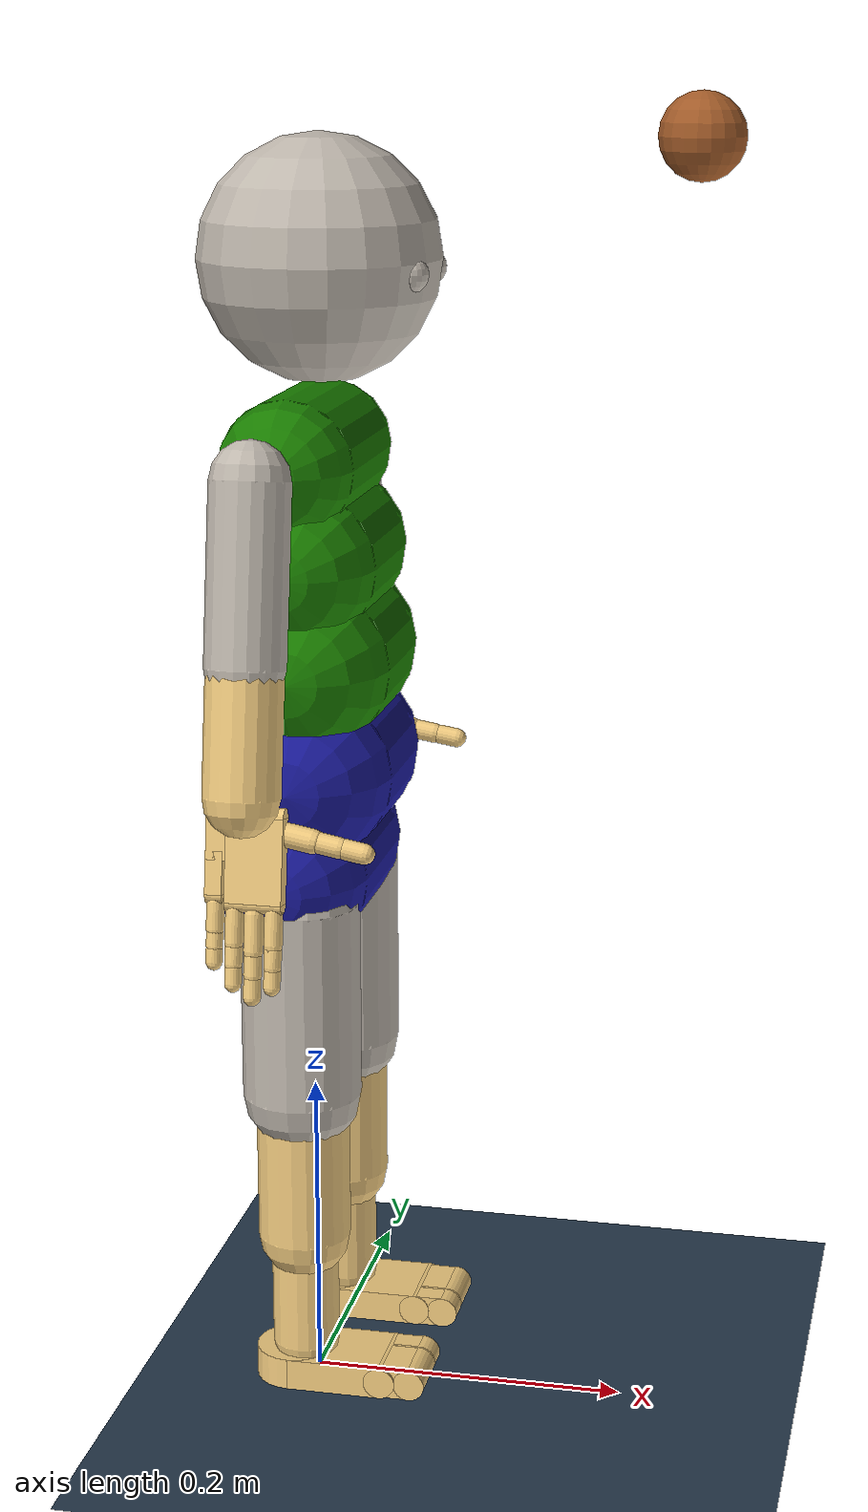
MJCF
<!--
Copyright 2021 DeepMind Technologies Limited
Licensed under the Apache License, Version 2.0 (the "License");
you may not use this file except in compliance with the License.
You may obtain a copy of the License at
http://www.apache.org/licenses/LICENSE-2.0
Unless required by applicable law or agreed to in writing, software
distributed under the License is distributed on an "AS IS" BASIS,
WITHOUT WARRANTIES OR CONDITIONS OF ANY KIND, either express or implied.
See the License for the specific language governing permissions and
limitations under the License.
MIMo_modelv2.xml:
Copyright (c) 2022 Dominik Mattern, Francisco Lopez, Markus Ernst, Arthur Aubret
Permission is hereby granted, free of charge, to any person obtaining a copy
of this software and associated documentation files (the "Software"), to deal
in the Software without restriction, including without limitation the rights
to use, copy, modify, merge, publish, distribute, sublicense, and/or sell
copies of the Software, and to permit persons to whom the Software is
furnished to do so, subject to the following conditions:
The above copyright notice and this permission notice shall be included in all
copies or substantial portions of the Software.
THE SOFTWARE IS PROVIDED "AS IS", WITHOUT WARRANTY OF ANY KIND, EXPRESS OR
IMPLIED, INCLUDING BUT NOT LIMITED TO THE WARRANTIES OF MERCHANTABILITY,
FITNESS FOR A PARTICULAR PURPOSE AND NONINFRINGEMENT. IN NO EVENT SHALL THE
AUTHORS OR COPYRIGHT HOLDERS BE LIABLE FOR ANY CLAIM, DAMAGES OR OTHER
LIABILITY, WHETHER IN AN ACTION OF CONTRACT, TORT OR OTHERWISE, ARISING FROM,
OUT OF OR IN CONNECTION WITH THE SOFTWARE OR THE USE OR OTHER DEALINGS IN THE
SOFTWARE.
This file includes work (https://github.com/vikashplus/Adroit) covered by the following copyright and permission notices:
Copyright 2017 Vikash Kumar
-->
<mujoco model="MIMo">

    <compiler inertiafromgeom="true" angle="degree"/>

    <option timestep="0.005" iterations="50" tolerance="1e-10" solver="Newton" jacobian="dense" cone="elliptic" impratio="1.0"/>

    <size nconmax="1000" njmax="5000" nstack="10000000" nuser_cam="3"/>

    <visual>
        <map force="0.1" zfar="30" znear="0.005"/>
        <rgba haze="0.15 0.25 0.35 1"/>
        <quality shadowsize="4096"/>
        <global offwidth="800" offheight="800"/>
    </visual>

    <default>
        <geom material="matgeom" condim="3" solimp="0.95 0.99 0.001 0.5 1" solref="0.005 1"/>
    </default>

    <asset>
        <texture type="skybox" builtin="gradient" rgb1="0.3 0.5 0.7" rgb2="0 0 0" width="512" height="512"/>

        <texture name="texplane" type="2d" builtin="checker" rgb1=".2 .3 .4" rgb2=".1 0.15 0.2" width="512" height="512" mark="cross" markrgb=".8 .8 .8"/>

        <texture name="texgeom" type="cube" builtin="flat" mark="cross" width="127" height="1278"
            rgb1="0.8 0.6 0.4" rgb2="0.8 0.6 0.4" markrgb="1 1 1" random="0.01"/>

        <material name="matplane" reflectance="0.3" texture="texplane" texrepeat="1 1" texuniform="true"/>

        <material name="matgeom" texture="texgeom" texuniform="true" rgba="0.8 0.6 .4 1"/>

		<material name="matmocap" texture="texgeom" texuniform="true" rgba="0.5 0 0.5 0.5"/>
    </asset>

	<!-- Import everything except the kinematic tree -->
	<include file="catch_meta.xml"></include>

    <equality>
        <weld body1="upper_body"/>
        <weld body1="lower_body"/>
        <weld body1="left_hand"/>
        <weld body1="left_foot"/>
        <weld body1="right_foot"/>
        <joint joint1="robot:right_th_swivel" polycoef="0 0 0 0 0"/>
        <joint joint1="robot:right_th_adduction" polycoef="-0.9 0 0 0 0"/>
        <joint joint1="robot:right_th_pivot" polycoef="0 0 0 0 0"/>
        <joint joint1="robot:right_th_middle" polycoef="0.4 0 0 0 0"/>
        <joint joint1="robot:right_th_distal" polycoef="0.3 0 0 0 0"/>
    </equality>

    <worldbody>
        <geom name="floor" pos="0 0 0" size="0 0 .25" type="plane" material="matplane" condim="3"/>

        <light directional="false" diffuse=".4 .4 .4" specular="0 0 0" pos="0 0 10" dir="0 0 -1" castshadow="false"/>
        <light mode="targetbodycom" target="upper_body" directional="false" diffuse=".8 .8 .8" specular="0.3 0.3 0.3" pos="0 0 5.0" dir="0 0 -1"/>

        <!-- The location and orientation of the base model can be set using this body -->
		<body name="mimo_location" pos="0 0 .35" euler="0 0 0">
			<freejoint/>
			<include file="mimo/MIMo_modelv2.xml"></include> <!-- Import the actual model-->
		</body>

        <body name="target" pos="0.24 -0.04 .8">
            <freejoint name="target_joint"/>
			<geom mass=".5" type="sphere" material="matgeom" size="0.025" pos="0 0 0" condim="6" solimp="0.95 0.99 0.001 0.5 1" solref="0.005 1"/>
		</body>

    </worldbody>
</mujoco>

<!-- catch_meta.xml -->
<mujoco model="MIMo">

	<!-- We use the first three user values on actuators to store the muscle model parameters. The first is VMAX, the next two are FMAX.-->
	<size nuser_actuator="3"/>

	<default>
		<default class="mimo">
        	<joint limited="true" damping=".1" stiffness=".1" armature="0.001" solimplimit="0.98 0.99 0.001 .5 1" solreflimit="0.02 1"/>
        	<geom condim="3" material="skin" friction="1 0.005 0.0002" solimp="0.95 0.99 0.001 0.5 1" solref="0.005 1"/>
        	<motor ctrlrange="-1 1" ctrllimited="true" forcelimited="true"/>
    	</default>
	</default>

    <asset>

		<texture name="tex_head_default" type="cube" fileright="tex/head_front.png" fileleft="tex/head_back.png" fileup="tex/head_left.png" filedown="tex/head_right.png" filefront="tex/head_top.png" rgb1="0.95 .8 .5"/>
		<texture name="tex_head_happy" type="cube" fileright="tex/head_front_happy.png" fileleft="tex/head_back.png" fileup="tex/head_left.png" filedown="tex/head_right.png" filefront="tex/head_top.png" rgb1="0.95 .8 .5"/>
		<texture name="tex_head_sad" type="cube" fileright="tex/head_front_sad.png" fileleft="tex/head_back.png" fileup="tex/head_left.png" filedown="tex/head_right.png" filefront="tex/head_top.png" rgb1="0.95 .8 .5"/>
		<texture name="tex_head_surprised" type="cube" fileright="tex/head_front_surprised.png" fileleft="tex/head_back.png" fileup="tex/head_left.png" filedown="tex/head_right.png" filefront="tex/head_top.png" rgb1="0.95 .8 .5"/>
		<texture name="tex_head_angry" type="cube" fileright="tex/head_front_angry.png" fileleft="tex/head_back.png" fileup="tex/head_left.png" filedown="tex/head_right.png" filefront="tex/head_top.png" rgb1="0.95 .8 .5"/>
		<texture name="tex_head_disgusted" type="cube" fileright="tex/head_front_disgusted.png" fileleft="tex/head_back.png" fileup="tex/head_left.png" filedown="tex/head_right.png" filefront="tex/head_top.png" rgb1="0.95 .8 .5"/>
		<texture name="tex_head_scared" type="cube" fileright="tex/head_front_scared.png" fileleft="tex/head_back.png" fileup="tex/head_left.png" filedown="tex/head_right.png" filefront="tex/head_top.png" rgb1="0.95 .8 .5"/>
		<texture name="tex_top_sleeve" type="cube" fileright="tex/sleeve_right.png" fileleft="tex/sleeve_left.png" fileup="tex/sleeve_up.png" filedown="tex/sleeve_down.png" filefront="tex/sleeve_front.png" fileback="tex/sleeve_back.png" rgb1="0.95 .8 .5"/>
		<texture name="tex_pants_leg" type="cube" fileright="tex/leg_right.png" fileleft="tex/leg_left.png" fileup="tex/leg_up.png" filedown="tex/leg_down.png" filefront="tex/leg_front.png" fileback="tex/leg_back.png" rgb1="0.95 .8 .5"/>
		<texture name="tex_eye_left" type="cube" fileright="tex/eye_pupil_left.png" rgb1="1 1 1"/>
		<texture name="tex_eye_right" type="cube" fileright="tex/eye_pupil_right.png" rgb1="1 1 1"/>

		<material name="skin" rgba="0.95 0.8 0.5 1" specular=".15" shininess=".7"/>
		<material name="buttons" rgba=".05 .05 .05 1" specular=".9" shininess=".9"/>
		<material name="head" texture="tex_head_default" texuniform="true" specular=".0" shininess=".0"/>
		<material name="top_up" rgba=".1 .5 0.0 1" specular=".0" shininess=".0"/>
		<material name="top_middle" rgba=".1 .5 0.0 1" specular=".0" shininess=".0"/>
		<material name="top_down" rgba=".1 .5 0.0 1" specular=".0" shininess=".0"/>
		<material name="top_sleeve" texture="tex_top_sleeve" texuniform="true" specular=".0" shininess=".0"/>
		<material name="pants_up" rgba="0.1 0.1 0.6 1" specular=".0" shininess=".0"/>
		<material name="pants_down" rgba="0.1 0.1 0.6 1" specular=".0" shininess=".0"/>
		<material name="pants_leg" texture="tex_pants_leg" texuniform="true" specular=".0" shininess=".0"/>
		<material name="eye_left" texture="tex_eye_left" texuniform="true" specular=".0" shininess=".0"/>
		<material name="eye_right" texture="tex_eye_right" texuniform="true" specular=".0" shininess=".0"/>

    </asset>

	<!-- Internal contacts should not have friction to reduce "getting stuck" on ourselves-->
	<contact>
		<pair geom1="lb" geom2="ub1" condim="1"/>
		<exclude body1="left_eye" body2="upper_body"/>
		<exclude body1="right_eye" body2="upper_body"/>
	</contact>

	<tendon>
		<fixed class="mimo" name="hip_bend" limited="true" range="-.01 .01">
			<joint joint="robot:hip_bend1" coef="1"/>
			<joint joint="robot:hip_bend2" coef="-1"/>
		</fixed>
		<fixed class="mimo" name="hip_rotation" limited="true" range="-.01 .01">
			<joint joint="robot:hip_rot1" coef="1"/>
			<joint joint="robot:hip_rot2" coef="-1"/>
		</fixed>
		<fixed class="mimo" name="hip_lean" limited="true" range="-.01 .01">
			<joint joint="robot:hip_lean1" coef="1"/>
			<joint joint="robot:hip_lean2" coef="-.5"/>
		</fixed>

		<fixed class="mimo" name="head_limits1" limited="true" range="-2.1 2.1">
			<joint joint="robot:head_swivel" coef="1"/>
			<joint joint="robot:head_tilt_side" coef="1"/>
		</fixed>
		<fixed class="mimo" name="head_limits2" limited="true" range="-2.1 2.1">
			<joint joint="robot:head_tilt" coef="1"/>
			<joint joint="robot:head_tilt_side" coef="1"/>
		</fixed>
		<fixed class="mimo" name="head_limits3" limited="true" range="-2.1 2.1">
			<joint joint="robot:head_swivel" coef="1"/>
			<joint joint="robot:head_tilt" coef="1"/>
		</fixed>
		<fixed class="mimo" name="head_limits1_sym" limited="true" range="-2.1 2.1">
			<joint joint="robot:head_swivel" coef="1"/>
			<joint joint="robot:head_tilt_side" coef="-1"/>
		</fixed>
		<fixed class="mimo" name="head_limits2_sym" limited="true" range="-2.1 2.1">
			<joint joint="robot:head_tilt" coef="1"/>
			<joint joint="robot:head_tilt_side" coef="-1"/>
		</fixed>
		<fixed class="mimo" name="head_limits3_sym" limited="true" range="-2.1 2.1">
			<joint joint="robot:head_swivel" coef="1"/>
			<joint joint="robot:head_tilt" coef="-1"/>
		</fixed>
		<!-- TODO: Change to springlength="0 0.1" after migrating to newer MuJoCo versions-->
		<fixed class="mimo" name="fingers_ad_ffmf_right" limited="false" springlength="0" stiffness=".03">
			<joint joint="robot:right_ff_side" coef="1"/>
			<joint joint="robot:right_mf_side" coef="-1"/>
		</fixed>
		<fixed class="mimo" name="fingers_ad_mfrf_right" limited="false" springlength="0" stiffness=".03">
			<joint joint="robot:right_mf_side" coef="1"/>
			<joint joint="robot:right_rf_side" coef="-1"/>
		</fixed>
		<fixed class="mimo" name="fingers_ad_rflf_right" limited="false" springlength="0" stiffness=".03">
			<joint joint="robot:right_rf_side" coef="1"/>
			<joint joint="robot:right_lf_side" coef="-1"/>
		</fixed>
	</tendon>

	<sensor>
		<accelerometer name="vestibular_acc" site="vestibular"/>
		<gyro name="vestibular_gyro" site="vestibular"/>

		<torque name="proprio:right_shoulder" site="torque_right_shoulder"/>
		<torque name="proprio:right_elbow" site="torque_right_elbow"/>
		<torque name="proprio:right_wrist" site="torque_right_wrist"/>

		<torque name="proprio:right_ff_knuckle" site="torque_right_ff_knuckle"/>
		<torque name="proprio:right_ff_middle" site="torque_right_ff_middle"/>
		<torque name="proprio:right_ff_distal" site="torque_right_ff_distal"/>
		<torque name="proprio:right_mf_knuckle" site="torque_right_mf_knuckle"/>
		<torque name="proprio:right_mf_middle" site="torque_right_mf_middle"/>
		<torque name="proprio:right_mf_distal" site="torque_right_mf_distal"/>
		<torque name="proprio:right_rf_knuckle" site="torque_right_rf_knuckle"/>
		<torque name="proprio:right_rf_middle" site="torque_right_rf_middle"/>
		<torque name="proprio:right_rf_distal" site="torque_right_rf_distal"/>
		<torque name="proprio:right_lf_meta" site="torque_right_lf_meta"/>
		<torque name="proprio:right_lf_knuckle" site="torque_right_lf_knuckle"/>
		<torque name="proprio:right_lf_middle" site="torque_right_lf_middle"/>
		<torque name="proprio:right_lf_distal" site="torque_right_lf_distal"/>
		<torque name="proprio:right_th_base" site="torque_right_th_base"/>
		<torque name="proprio:right_th_hub" site="torque_right_th_hub"/>
		<torque name="proprio:right_th_distal" site="torque_right_th_distal"/>

	</sensor>

    <actuator>

		<motor class="mimo"	name="act:right_shoulder_horizontal" 		joint="robot:right_shoulder_horizontal" gear="1.8" 			forcerange="-1 1"		user="1.811 18.80 15.30"/>
		<motor class="mimo"	name="act:right_shoulder_abduction" 		joint="robot:right_shoulder_ad_ab" 		gear="4" 			forcerange="-.6875 1"	user=".8793 44.17 69.23"/>
		<motor class="mimo"	name="act:right_shoulder_internal" 			joint="robot:right_shoulder_rotation" 	gear="2.5" 			forcerange="-1 .64"		user="1.498 25.09 17.10"/>
		<motor class="mimo"	name="act:right_elbow" 						joint="robot:right_elbow" 				gear="3.6" 			forcerange="-1 .83"		user="1.566 35.43 27.04"/>
		<motor class="mimo"	name="act:right_wrist_rotation" 			joint="robot:right_hand1" 				gear=".7"			forcerange="-1 1"		user="1.513 7.842 7.842"/>
		<motor class="mimo"	name="act:right_wrist_flexion" 				joint="robot:right_hand2" 				gear="1.24"			forcerange="-1 .57"		user="1.455 13.66 7.874"/>
		<motor class="mimo"	name="act:right_wrist_ulnar" 				joint="robot:right_hand3" 				gear=".95"			forcerange="-.87 1"		user="2.254 5.155 6.021"/>

		<motor class="mimo"	name="act:right_ff_side" 			 		joint="robot:right_ff_side" 			gear=".05"			forcerange="-1 1"		user="6.217 .1556 .1556"/>
		<motor class="mimo"	name="act:right_ff_knuckle" 			 	joint="robot:right_ff_knuckle"			gear=".0619"		forcerange="-.345 1"	user="4.368 .1422 .4378"/>
		<motor class="mimo"	name="act:right_ff_middle" 				 	joint="robot:right_ff_middle"			gear=".02063"		forcerange="-.345 1"	user="3.493 .04684 .1339"/>
		<motor class="mimo"	name="act:right_ff_distal" 				 	joint="robot:right_ff_distal"			gear=".01548"		forcerange="-.345 1"	user="2.539 .03054 .07747"/>

		<motor class="mimo"	name="act:right_mf_side" 			 		joint="robot:right_mf_side" 			gear=".05"			forcerange="-1 1"		user="5.375 .1556 .1556"/>
		<motor class="mimo"	name="act:right_mf_knuckle" 			 	joint="robot:right_mf_knuckle"			gear=".117"			forcerange="-.345 1"	user="4.325 .2687 .8275"/>
		<motor class="mimo"	name="act:right_mf_middle" 			 		joint="robot:right_mf_middle"			gear=".039"			forcerange="-.345 1"	user="3.375 .08855 .2532"/>
		<motor class="mimo"	name="act:right_mf_distal" 				 	joint="robot:right_mf_distal"			gear=".02925"		forcerange="-.345 1"	user="2.577 .05771 .1464"/>

		<motor class="mimo"	name="act:right_rf_side"  					joint="robot:right_rf_side" 			gear=".05"			forcerange="-1 1"		user="4.984 .1556 .1556"/>
		<motor class="mimo"	name="act:right_rf_knuckle" 			 	joint="robot:right_rf_knuckle"			gear=".078"			forcerange="-.345 1"	user="2.817 .1791 .5517"/>
		<motor class="mimo"	name="act:right_rf_middle" 			 		joint="robot:right_rf_middle" 			gear=".026"			forcerange="-.345 1"	user="3.007 .05903 .1688"/>
		<motor class="mimo"	name="act:right_rf_distal" 				 	joint="robot:right_rf_distal" 			gear=".0195"		forcerange="-.345 1"	user="2.313 .03847 .09759"/>

		<motor class="mimo"	name="act:right_lf_side" 					joint="robot:right_lf_side" 			gear=".05" 			forcerange="-1 1"		user="5.282 .1556 .1556"/>
		<motor class="mimo"	name="act:right_lf_meta" 					joint="robot:right_lf_meta" 			gear=".064" 		forcerange="-.345 1"	user="6.855 .07962 .1508"/>
		<motor class="mimo"	name="act:right_lf_knuckle" 			 	joint="robot:right_lf_knuckle" 			gear=".0196"		forcerange="-.345 1"	user="2.337 .04502 .1386"/>
		<motor class="mimo"	name="act:right_lf_middle" 				 	joint="robot:right_lf_middle" 			gear=".00653"		forcerange="-.345 1"	user="2.566 .01483 .04239"/>
		<motor class="mimo"	name="act:right_lf_distal" 				 	joint="robot:right_lf_distal" 			gear=".00490"		forcerange="-.345 1"	user="2.001 .009666 .02452"/>
	</actuator>

</mujoco>

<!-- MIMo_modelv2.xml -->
<mujoco model="MIMo">

	<body childclass="mimo" name="hip" pos="0 0 0">
		<!-- Whole body height is 77.8 cm -->
		<geom name="lb" type="capsule" size=".048 .043" mass="1.1684" material="pants_down" pos="-.002 0 0.005" euler="90 0 0"/>
		<site name="lowerBody_center" type="sphere" size=".01 .01 .01" pos="0 0 0"/>
		<body name="lower_body" pos="0.002 0 0.076">
			<joint name="robot:hip_lean1" type="hinge" pos="0 0 -.05" axis="1 0 0" range="-14 14" stiffness="3.38" damping="0.77" frictionloss=".049" armature="0.01"/>
			<joint name="robot:hip_rot1" type="hinge" pos="0 0 -.05" axis="0 0 1" range="-18 18" stiffness="1.45" damping="0.29" frictionloss=".018" armature="0.01"/>
			<joint name="robot:hip_bend1" type="hinge" pos="0 0 -0.05" axis="0 1 0" range="-17 30.5" stiffness="2.20" damping="0.84" frictionloss="0.040" armature="0.01"/>
			<site name="torque_lb" type="sphere" size="0.01" pos="0 0 0" group="4"/>
			<geom name="cb" type="capsule" size=".053 .035" mass="1.3359" material="pants_up" contype="0" pos="0.005 0 -.008" euler="90 0 0"/>

			<body name="upper_body" pos="-.002 0 0.091">
				<joint name="robot:hip_lean2" type="hinge" pos="0 0 -.05" axis="1 0 0" range="-27 27" stiffness="1.69" damping="0.38" frictionloss=".024" armature="0.01"/>
				<joint name="robot:hip_rot2" type="hinge" pos="0 0 -.05" axis="0 0 1" range="-18 18" stiffness="1.45" damping="0.29" frictionloss=".018" armature="0.01"/>
				<joint name="robot:hip_bend2" type="hinge" pos="0 0 -.05" axis="0 1 0" range="-17 30.5" stiffness="2.20" damping="0.84" frictionloss="0.040" armature="0.01"/>
				<site name="torque_ub" type="sphere" size="0.01" pos="0 0 0" group="4"/>
				<geom name="ub1" type="capsule" size=".052 .035" mass="1.0976" material="top_down" pos="0.007 0 -.032" euler="90 0 0"/>
				<geom name="ub2" type="capsule" size=".048 .039" mass="0.9531" material="top_middle" pos="0.004 0 0.03" euler="90 0 0"/>
				<geom name="neck" type="capsule" size="1e-6 1e-6" mass="0" material="skin" pos="0 0 0" euler="0 0 0"/>

				<body name="chest" pos="0 0 0.09">
					<joint name="robot:chest_lean" type="hinge" pos="0 0 0" axis="1 0 0" range="-9 9" stiffness="1.69" damping="0.38" frictionloss=".024" armature="0.01"/>
					<joint name="robot:chest_rot" type="hinge" pos="0 0 0" axis="0 0 1" range="-18 18" stiffness="1.45" damping="0.29" frictionloss=".018" armature="0.01"/>
					<site name="torque_chest" type="sphere" size="0.01" pos="0 0 0" group="4"/>
					<geom name="ub3" type="capsule" size=".041 .047" mass="0.7217" material="top_up" pos="0 0 0" euler="90 0 0"/>

					<body name="right_upper_arm" pos="-.005 -0.105 .003" euler="170 0 0">
						<!-- Arm length is 31.36cm -->
						<joint name="robot:right_shoulder_horizontal" type="hinge" pos="0 -.024 0" axis="0 1 -4" range="-28 118" stiffness=".09" damping=".05" frictionloss=".0009" armature="0.004"/>
						<joint name="robot:right_shoulder_ad_ab" type="hinge" pos="0 0 0" axis="-1 0 0" range="-84 183" stiffness=".11" damping=".10" frictionloss=".0014" armature="0.004"/>
						<joint name="robot:right_shoulder_rotation" type="hinge" pos="0 0 0" axis="0 0 -1" range="-99 67" stiffness=".12" damping=".07" frictionloss=".0008" armature="0.004"/>
						<site name="torque_right_shoulder" type="sphere" size="0.01" pos="0 0 0" group="4"/>
						<geom name="right_uarm1" type="capsule" material="top_sleeve" size="0.024 0.0536" mass="0.2708" pos="0 0 .0536" euler="0 0 0"/>
						<body name="right_lower_arm" pos="0 0 .1076" euler="0 0 0">
							<joint name="robot:right_elbow" type="hinge" pos="0 0 0" axis="0 -1 0" springref="-20" range="-146 5" stiffness=".13" damping=".11" frictionloss=".030" armature="0.002"/>
							<site name="torque_right_elbow" type="sphere" size="0.01" pos="0 0 0" group="4"/>
							<geom name="right_larm" type="capsule" size=".023 0.037" mass="0.1869" pos="0 0 .037" contype="8" conaffinity="7"/>
							<body name="right_hand" pos="0.007 -.009 .11032" euler="0 0 0"> <!-- Hand length is 9.3, Palm length is 5.16 -->
								<joint name="robot:right_hand1" type="hinge" pos="-0.007 0.007 -.01532" axis="0 0 -1" springref="-20" range="-90 90" stiffness=".22" damping=".03" frictionloss=".007" armature="0.001"/>
								<joint name="robot:right_hand2" type="hinge" pos="-0.007 -0.005 -.02032" axis="-1 0 0" range="-92 86" stiffness=".33" damping=".11" frictionloss=".007" armature="0.001"/>
								<joint name="robot:right_hand3" type="hinge" pos="-0.007 0 -.02532" axis="0 1 0" range="-53 48" stiffness=".38" damping=".11" frictionloss=".007" armature="0.001"/>
								<site name="torque_right_wrist" type="sphere" size="0.002" pos="0 0 0" group="4"/>
								<geom name="geom:right_hand1" type="box" pos="0 0 0" size=".01712 .00584 .02532" mass="0.01895" condim="6"/>
								<geom name="geom:right_hand2" type="box" pos="-.023 0 -0.0124" size=".00588 .00584 .01292" mass=".003321" condim="6"/>
								<geom name="geom:right_hand3" type="cylinder" pos="0 0 .02532" size=".00584 .01710" mass=".003367" euler="0 90 0" condim="6"/>
								<geom name="geom:right_hand4" type="cylinder" pos="-.00588 0 -.02532" size=".00584 .02298" mass=".004524" euler="0 90 0" condim="6"/>
								<!-- First Finger -->
								<body name="right_ffknuckle" pos="0.01177 0 0.02945">
									<joint name="robot:right_ff_side" type="hinge" pos="0 0 0" axis="0 1 0" range="-25 25" stiffness=".003" damping="0.001" armature="0.0001"/>
									<joint name="robot:right_ff_knuckle" type="hinge" pos="0 0 0" axis="1 0 0" range="-20 90" springref="45" stiffness="0.0008" damping="0.0005" armature="0.0001"/>
									<site name="torque_right_ff_knuckle" type="sphere" size="0.002" pos="0 0 0" group="4"/>
									<geom name="geom:right_ffknuckle1" type="capsule" pos="0 0 .00992" size=".00549 .00992" mass=".002692" condim="6" />
									<!--middle-->
									<body name="right_ffmiddle" pos="0 0 0.01985">
										<joint name="robot:right_ff_middle" type="hinge" pos="0 0 0" axis="1 0 0" range="-5 100" springref="45" stiffness="0.0006" damping="0.0005" armature="0.0001"/>
										<site name="torque_right_ff_middle" type="sphere" size="0.002" pos="0 0 0" group="4"/>
										<geom name="geom:right_ffmiddle1" type="capsule" pos="0 0 .00806" size=".0052 .00501" mass=".001497" condim="6"/>
										<!--distal-->
										<body name="right_ffdistal" pos="0 0 0.0135">
											<joint name="robot:right_ff_distal" type="hinge" pos="0 0 0" axis="1 0 0" range="-5 80" springref="30" stiffness="0.0006" damping="0.0005" armature="0.0001"/>
											<site name="torque_right_ff_distal" type="sphere" size="0.002" pos="0 0 0" group="4"/>
											<geom name="geom:right_ffdistal1" type="capsule" pos="0 0 .00669" size=".0050 .00464" mass=".001291" condim="6"/>
										</body>
									</body>
								</body>
								<!-- Middle Finger -->
								<body name="right_mfknuckle" pos="0 0 0.03152">
									<joint name="robot:right_mf_side" type="hinge" pos="0 0 0" axis="0 1 0" range="-25 25" stiffness=".003" damping="0.001" armature="0.0001"/>
									<joint name="robot:right_mf_knuckle" type="hinge" pos="0 0 0" axis="1 0 0" range="-20 90" springref="45" stiffness="0.0010" damping="0.0005" armature="0.0001"/>
									<site name="torque_right_mf_knuckle" type="sphere" size="0.002" pos="0 0 0" group="4"/>
									<geom name="geom:right_mfknuckle1" type="capsule" pos="0 0 .011" size=".00579 .011" mass=".003284" condim="6"/>
									<!--Middle-->
									<body name="right_mfmiddle" pos="0 0 0.022">
										<joint name="robot:right_mf_middle" type="hinge" pos="0 0 0" axis="1 0 0" range="-5 100" springref="45" stiffness="0.0007" damping="0.0005" armature="0.0001"/>
										<site name="torque_right_mf_middle" type="sphere" size="0.002" pos="0 0 0" group="4"/>
										<geom name="geom:right_mfmiddle1" type="capsule" pos="0 0 .00867" size=".0054 .00562" mass=".001757" condim="6"/>
										<!--Distal-->
										<body name="right_mfdistal" pos="0 0 0.0145">
											<joint name="robot:right_mf_distal" type="hinge" pos="0 0 0" axis="1 0 0" range="-5 80" springref="30" stiffness="0.0006" damping="0.0005" armature="0.0001"/>
											<site name="torque_right_mf_distal" type="sphere" size="0.002" pos="0 0 0" group="4"/>
											<geom name="geom:right_mfdistal1" type="capsule" pos="0 0 .00742" size=".0052 .00538" mass=".001563" condim="6"/>
										</body>
									</body>
								</body>
								<!-- Ring Finger -->
								<body name="right_rfknuckle" pos="-0.01177 0 0.02945">
									<joint name="robot:right_rf_side" type="hinge" pos="0 0 0" axis="0 1 0" range="-25 25" stiffness=".003" damping="0.001" armature="0.0001"/>
									<joint name="robot:right_rf_knuckle" type="hinge" pos="0 0 0" axis="1 0 0" range="-20 90" springref="45" stiffness="0.0009" damping="0.0005" armature="0.0001"/>
									<site name="torque_right_rf_knuckle" type="sphere" size="0.002" pos="0 0 0" group="4"/>
									<geom name="geom:right_rfknuckle1" type="capsule" pos="0 0 .00978" size=".00549 .00978" mass=".002664" condim="6"/>
									<!--Middle-->
									<body name="right_rfmiddle" pos="0 0 0.01956">
										<joint name="robot:right_rf_middle" type="hinge" pos="0 0 0" axis="1 0 0" range="-5 100" springref="45" stiffness="0.0007" damping="0.0005" armature="0.0001"/>
										<site name="torque_right_rf_middle" type="sphere" size="0.002" pos="0 0 0" group="4"/>
										<geom name="geom:right_rfmiddle1" type="capsule" pos="0 0 .00793" size=".0052 .00489" mass=".001476" condim="6"/>
										<!--Distal-->
										<body name="right_rfdistal" pos="0 0 0.013">
											<joint name="robot:right_rf_distal" type="hinge" pos="0 0 0" axis="1 0 0" range="-5 80" springref="30" stiffness="0.0006" damping="0.0005" armature="0.0001"/>
											<site name="torque_right_rf_distal" type="sphere" size="0.002" pos="0 0 0" group="4"/>
											<geom name="geom:right_rfdistal1" type="capsule" pos="0 0 .00684" size=".0050 .00479" mass=".001316" condim="6"/>
										</body>
									</body>
								</body>
								<!-- Little Finger -->
								<body name="right_lfmetacarpal" pos="-0.01498 0 0.0031">
									<joint name="robot:right_lf_meta" type="hinge" pos="0 0 0" axis="0.571 0 0.821" range="0 40" stiffness=".01" damping=".001" armature="0.0001"/>
									<site name="torque_right_lf_meta" type="sphere" size="0.002" pos="0 0 0" group="4"/>
									<geom name="geom:right_lfmetacarpal1" type="box" pos="-.00883 0 0.00517" size=".00508 .00584 .01292" mass=".002879" condim="6" contype="16" conaffinity="7"/>
									<geom name="geom:right_lfmetacarpal2" type="cylinder" pos="-.00883 0 .01809" size=".00584 .005" mass=".0009879" euler="0 90 0" condim="6" contype="16" conaffinity="7"/>
									<!--Proximal-->
									<body name="right_lfknuckle" pos="-0.00849 0 0.02273">
										<joint name="robot:right_lf_side" type="hinge" pos="0 0 0" axis="0 1 0" range="-25 25" stiffness="0.003" damping="0.001" armature="0.0001"/>
										<joint name="robot:right_lf_knuckle" type="hinge" pos="0 0 0" axis="1 0 0" range="-20 90" springref="45" stiffness="0.0007" damping="0.0005" armature="0.0001"/>
										<site name="torque_right_lf_knuckle" type="sphere" size="0.002" pos="0 0 0" group="4"/>
										<geom name="geom:right_lfknuckle1" type="capsule" pos="0 0 .00816" size=".00529 .00816" mass=".002143" condim="6"/>
										<!--Middle-->
										<body name="right_lfmiddle" pos="0 0 0.0166">
											<joint name="robot:right_lf_middle" type="hinge" pos="0 0 0" axis="1 0 0" range="-5 100" springref="45" stiffness="0.0006" damping="0.0005" armature="0.0001"/>
											<site name="torque_right_lf_middle" type="sphere" size="0.002" pos="0 0 0" group="4"/>
											<geom name="geom:right_lfmiddle1" type="capsule" pos="0 0 .005" size=".0050 .00455" mass=".001276" condim="6"/>
											<!--Distal-->
											<body name="right_lfdistal" pos="0 0 0.0092">
												<joint name="robot:right_lf_distal" type="hinge" pos="0 0 0" axis="1 0 0" range="-5 80" springref="30" stiffness="0.0006" damping="0.0005" armature="0.0001"/>
												<site name="torque_right_lf_distal" type="sphere" size="0.002" pos="0 0 0" group="4"/>
												<geom name="geom:right_lfdistal1" type="capsule" pos="0 0 .00596" size=".0049 .00391" mass=".001113" condim="6"/>
											</body>
										</body>
									</body>
								</body>
								<!-- Thumb -->
								<body name="right_thbase" pos="0.0123 -0.00423 -0.01602" euler="0 80 30">
									<joint name="robot:right_th_swivel" type="hinge" pos="0 0 0" axis="3 -5 -1" range="-10 110" springref="40" stiffness="0.003" damping="0.001" armature="0.0001"/>
									<joint name="robot:right_th_adduction" type="hinge" pos="0 0 0" axis="1 2 0" range="-60 0" springref="-35" stiffness="0.004" damping="0.001" armature="0.0001"/>
									<site name="torque_right_th_base" type="sphere" size="0.002" pos="0 0 0" group="4"/>
									<geom name="geom:right_thbase1" type="capsule" pos="0 0 .01027" size=".00736 .01027" mass=".005463" condim="6" contype="16" conaffinity="7"/>
									<!--Hub-->
									<body name="right_thhub" pos="0 0 0.02125">
										<joint name="robot:right_th_pivot" type="hinge" pos="0 0 0" axis="1 0 0" range="-10 10" springref="0" stiffness="0.002" damping="0.001" armature="0.0001"/>
										<joint name="robot:right_th_middle" type="hinge" pos="0 0 0" axis="0 -1 0" range="0 90" springref="30" stiffness="0.004" damping="0.001" armature="0.0001"/>
										<site name="torque_right_th_hub" type="sphere" size="0.002" pos="0 0 0" group="4"/>
										<geom name="geom:right_thhub1" type="capsule" pos="0 0 .0085" size=".00638 .00697" mass=".003021" condim="6"/>
										<!--Distal-->
										<body name="right_thdistal" pos="0 0 0.015">
											<joint name="robot:right_th_distal" type="hinge" pos="0 0 0" axis="0 -1 0" range="0 90" springref="20" stiffness="0.004" damping="0.001" armature="0.0001"/>
											<site name="torque_right_th_distal" type="sphere" size="0.002" pos="0 0 0" group="4"/>
											<geom name="geom:right_thdistal1" type="capsule" pos="0 0 .00996" size=".00618 .00587" mass=".002509" condim="6"/>
										</body>
									</body>
								</body>
							</body>
						</body>
					</body>

					<body name="left_upper_arm" pos="-.005 0.105 .003" euler="-170 0 0">
						<!-- Arm length is 31.36cm -->
						<joint name="robot:left_shoulder_horizontal" type="hinge" pos="0 .024 0" axis="0 1 4" range="-28 118" stiffness=".09" damping=".05" frictionloss=".0009" armature="0.004"/>
						<joint name="robot:left_shoulder_ad_ab" type="hinge" pos="0 0 0" axis="1 0 0" range="-84 183" stiffness=".11" damping=".10" frictionloss=".0014" armature="0.004"/>
						<joint name="robot:left_shoulder_rotation" type="hinge" pos="0 0 0" axis="0 0 1" range="-99 67" stiffness=".12" damping=".07" frictionloss=".0008" armature="0.004"/>
						<site name="torque_left_shoulder" type="sphere" size="0.01" pos="0 0 0" group="4"/>
						<geom name="left_uarm1" type="capsule" material="top_sleeve" size="0.024 0.0536" mass="0.2708" pos="0 0 .0536" euler="0 0 0"/>
						<body name="left_lower_arm" pos="0 0 .1076" euler="0 0 0">
							<joint name="robot:left_elbow" type="hinge" pos="0 0 0" axis="0 -1 0" springref="-20" range="-146 5" stiffness=".13" damping=".11" frictionloss=".030" armature="0.002"/>
							<site name="torque_left_elbow" type="sphere" size="0.01" pos="0 0 0" group="4"/>
							<geom name="left_larm" type="capsule" size=".023 0.037" mass="0.1869" pos="0 0 .037" contype="2" conaffinity="25"/>
							<body name="left_hand" pos="0.007 .009 .11032" euler="0 0 0"> <!-- Hand length is 9.3, Palm length is 5.16 -->
								<joint name="robot:left_hand1" type="hinge" pos="-0.007 -0.007 -.01532" axis="0 0 1" springref="-20" range="-90 90" stiffness=".22" damping=".03" frictionloss=".007" armature="0.001"/>
								<joint name="robot:left_hand2" type="hinge" pos="-0.007 .005 -.02032" axis="1 0 0" range="-92 86" stiffness=".33" damping=".11" frictionloss=".007" armature="0.001"/>
								<joint name="robot:left_hand3" type="hinge" pos="-0.007 0 -.02532" axis="0 1 0" range="-53 48" stiffness=".38" damping=".11" frictionloss=".007" armature="0.001"/>
								<site name="torque_left_wrist" type="sphere" size="0.002" pos="0 0 0" group="4"/>
								<geom name="geom:left_hand1" type="box" pos="0 0 0" size=".01712 .00584 .02532" mass="0.01895" condim="6"/>
								<geom name="geom:left_hand2" type="box" pos="-.023 0 -0.0124" size=".00588 .00584 .01292" mass=".003321" condim="6"/>
								<geom name="geom:left_hand3" type="cylinder" pos="0 0 .02532" size=".00584 .01710" mass=".003367" euler="0 90 0" condim="6"/>
								<geom name="geom:left_hand4" type="cylinder" pos="-.00588 0 -.02532" size=".00584 .02298" mass=".004524" euler="0 90 0" condim="6"/>
								<!-- First Finger -->
								<body name="left_ffknuckle" pos="0.01177 0 0.02945">
									<joint name="robot:left_ff_side" type="hinge" pos="0 0 0" axis="0 1 0" range="-25 25" stiffness=".003" damping="0.001" armature="0.0001"/>
									<joint name="robot:left_ff_knuckle" type="hinge" pos="0 0 0" axis="-1 0 0" range="-20 90" springref="45" stiffness="0.0008" damping="0.0005" armature="0.0001"/>
									<site name="torque_left_ff_knuckle" type="sphere" size="0.002" pos="0 0 0" group="4"/>
									<geom name="geom:left_ffknuckle1" type="capsule" pos="0 0 .00992" size=".00549 .00992" mass=".002692" condim="6" />
									<!--middle-->
									<body name="left_ffmiddle" pos="0 0 0.01985">
										<joint name="robot:left_ff_middle" type="hinge" pos="0 0 0" axis="-1 0 0" range="-5 100" springref="45" stiffness="0.0006" damping="0.0005" armature="0.0001"/>
										<site name="torque_left_ff_middle" type="sphere" size="0.002" pos="0 0 0" group="4"/>
										<geom name="geom:left_ffmiddle1" type="capsule" pos="0 0 .00806" size=".0052 .00501" mass=".001497" condim="6"/>
										<!--distal-->
										<body name="left_ffdistal" pos="0 0 0.0135">
											<joint name="robot:left_ff_distal" type="hinge" pos="0 0 0" axis="-1 0 0" range="-5 80" springref="30" stiffness="0.0006" damping="0.0005" armature="0.0001"/>
											<site name="torque_left_ff_distal" type="sphere" size="0.002" pos="0 0 0" group="4"/>
											<geom name="geom:left_ffdistal1" type="capsule" pos="0 0 .00669" size=".0050 .00464" mass=".001291" condim="6"/>
										</body>
									</body>
								</body>
								<!-- Middle Finger -->
								<body name="left_mfknuckle" pos="0 0 0.03152">
									<joint name="robot:left_mf_side" type="hinge" pos="0 0 0" axis="0 1 0" range="-25 25" stiffness=".003" damping="0.001" armature="0.0001"/>
									<joint name="robot:left_mf_knuckle" type="hinge" pos="0 0 0" axis="-1 0 0" range="-20 90" springref="45" stiffness="0.0010" damping="0.0005" armature="0.0001"/>
									<site name="torque_left_mf_knuckle" type="sphere" size="0.002" pos="0 0 0" group="4"/>
									<geom name="geom:left_mfknuckle1" type="capsule" pos="0 0 .011" size=".00579 .011" mass=".003284" condim="6"/>
									<!--Middle-->
									<body name="left_mfmiddle" pos="0 0 0.022">
										<joint name="robot:left_mf_middle" type="hinge" pos="0 0 0" axis="-1 0 0" range="-5 100" springref="45" stiffness="0.0007" damping="0.0005" armature="0.0001"/>
										<site name="torque_left_mf_middle" type="sphere" size="0.002" pos="0 0 0" group="4"/>
										<geom name="geom:left_mfmiddle1" type="capsule" pos="0 0 .00867" size=".0054 .00562" mass=".001757" condim="6"/>
										<!--Distal-->
										<body name="left_mfdistal" pos="0 0 0.0145">
											<joint name="robot:left_mf_distal" type="hinge" pos="0 0 0" axis="-1 0 0" range="-5 80" springref="30" stiffness="0.0006" damping="0.0005" armature="0.0001"/>
											<site name="torque_left_mf_distal" type="sphere" size="0.002" pos="0 0 0" group="4"/>
											<geom name="geom:left_mfdistal1" type="capsule" pos="0 0 .00742" size=".0052 .00538" mass=".001563" condim="6"/>
										</body>
									</body>
								</body>
								<!-- Ring Finger -->
								<body name="left_rfknuckle" pos="-0.01177 0 0.02945">
									<joint name="robot:left_rf_side" type="hinge" pos="0 0 0" axis="0 1 0" range="-25 25" stiffness=".003" damping="0.001" armature="0.0001"/>
									<joint name="robot:left_rf_knuckle" type="hinge" pos="0 0 0" axis="-1 0 0" range="-20 90" springref="45" stiffness="0.0009" damping="0.0005" armature="0.0001"/>
									<site name="torque_left_rf_knuckle" type="sphere" size="0.002" pos="0 0 0" group="4"/>
									<geom name="geom:left_rfknuckle1" type="capsule" pos="0 0 .00978" size=".00549 .00978" mass=".002664" condim="6"/>
									<!--Middle-->
									<body name="left_rfmiddle" pos="0 0 0.01956">
										<joint name="robot:left_rf_middle" type="hinge" pos="0 0 0" axis="-1 0 0" range="-5 100" springref="45" stiffness="0.0007" damping="0.0005" armature="0.0001"/>
										<site name="torque_left_rf_middle" type="sphere" size="0.002" pos="0 0 0" group="4"/>
										<geom name="geom:left_rfmiddle1" type="capsule" pos="0 0 .00793" size=".0052 .00489" mass=".001476" condim="6"/>
										<!--Distal-->
										<body name="left_rfdistal" pos="0 0 0.013">
											<joint name="robot:left_rf_distal" type="hinge" pos="0 0 0" axis="-1 0 0" range="-5 80" springref="30" stiffness="0.0006" damping="0.0005" armature="0.0001"/>
											<site name="torque_left_rf_distal" type="sphere" size="0.002" pos="0 0 0" group="4"/>
											<geom name="geom:left_rfdistal1" type="capsule" pos="0 0 .00684" size=".0050 .00479" mass=".001316" condim="6"/>
										</body>
									</body>
								</body>
								<!-- Little Finger -->
								<body name="left_lfmetacarpal" pos="-0.01498 0 0.0031">
									<joint name="robot:left_lf_meta" type="hinge" pos="0 0 0" axis="-0.571 0 -0.821" range="0 40" stiffness=".01" damping=".001" armature="0.0001"/>
									<site name="torque_left_lf_meta" type="sphere" size="0.002" pos="0 0 0" group="4"/>
									<geom name="geom:left_lfmetacarpal1" type="box" pos="-.00883 0 0.00517" size=".00508 .00584 .01292" mass=".002879" condim="6" contype="4" conaffinity="25"/>
									<geom name="geom:left_lfmetacarpal2" type="cylinder" pos="-.00883 0 .01809" size=".00584 .005" mass=".0009879" euler="0 90 0" condim="6" contype="4" conaffinity="25"/>
									<!--Proximal-->
									<body name="left_lfknuckle" pos="-0.00849 0 0.02273">
										<joint name="robot:left_lf_side" type="hinge" pos="0 0 0" axis="0 1 0" range="-25 25" stiffness="0.003" damping="0.001" armature="0.0001"/>
										<joint name="robot:left_lf_knuckle" type="hinge" pos="0 0 0" axis="-1 0 0" range="-20 90" springref="45" stiffness="0.0007" damping="0.0005" armature="0.0001"/>
										<site name="torque_left_lf_knuckle" type="sphere" size="0.002" pos="0 0 0" group="4"/>
										<geom name="geom:left_lfknuckle1" type="capsule" pos="0 0 .00816" size=".00529 .00816" mass=".002143" condim="6"/>
										<!--Middle-->
										<body name="left_lfmiddle" pos="0 0 0.0166">
											<joint name="robot:left_lf_middle" type="hinge" pos="0 0 0" axis="-1 0 0" range="-5 100" springref="45" stiffness="0.0006" damping="0.0005" armature="0.0001"/>
											<site name="torque_left_lf_middle" type="sphere" size="0.002" pos="0 0 0" group="4"/>
											<geom name="geom:left_lfmiddle1" type="capsule" pos="0 0 .005" size=".0050 .00455" mass=".001276" condim="6"/>
											<!--Distal-->
											<body name="left_lfdistal" pos="0 0 0.0092">
												<joint name="robot:left_lf_distal" type="hinge" pos="0 0 0" axis="-1 0 0" range="-5 80" springref="30" stiffness="0.0006" damping="0.0005" armature="0.0001"/>
												<site name="torque_left_lf_distal" type="sphere" size="0.002" pos="0 0 0" group="4"/>
												<geom name="geom:left_lfdistal1" type="capsule" pos="0 0 .00596" size=".0049 .00391" mass=".001113" condim="6"/>
											</body>
										</body>
									</body>
								</body>
								<!-- Thumb -->
								<body name="left_thbase" pos="0.0123 0.00423 -0.01602" euler="0 80 -30">
									<joint name="robot:left_th_swivel" type="hinge" pos="0 0 0" axis="-3 -5 1" range="-10 110" springref="40" stiffness="0.003" damping="0.001" armature="0.0001"/>
									<joint name="robot:left_th_adduction" type="hinge" pos="0 0 0" axis="-1 2 0" range="-60 0" springref="-35" stiffness="0.004" damping="0.001" armature="0.0001"/>
									<site name="torque_left_th_base" type="sphere" size="0.002" pos="0 0 0" group="4"/>
									<geom name="geom:left_thbase1" type="capsule" pos="0 0 .01027" size=".00736 .01027" mass=".005463" condim="6" contype="4" conaffinity="25"/>
									<!--Hub-->
									<body name="left_thhub" pos="0 0 0.02125">
										<joint name="robot:left_th_pivot" type="hinge" pos="0 0 0" axis="-1 0 0" range="-10 10" springref="0" stiffness="0.002" damping="0.001" armature="0.0001"/>
										<joint name="robot:left_th_middle" type="hinge" pos="0 0 0" axis="0 -1 0" range="0 90" springref="30" stiffness="0.004" damping="0.001" armature="0.0001"/>
										<site name="torque_left_th_hub" type="sphere" size="0.002" pos="0 0 0" group="4"/>
										<geom name="geom:left_thhub1" type="capsule" pos="0 0 .0085" size=".00638 .00697" mass=".003021" condim="6"/>
										<!--Distal-->
										<body name="left_thdistal" pos="0 0 0.015">
											<joint name="robot:left_th_distal" type="hinge" pos="0 0 0" axis="0 -1 0" range="0 90" springref="20" stiffness="0.004" damping="0.001" armature="0.0001"/>
											<site name="torque_left_th_distal" type="sphere" size="0.002" pos="0 0 0" group="4"/>
											<geom name="geom:left_thdistal1" type="capsule" pos="0 0 .00996" size=".00618 .00587" mass=".002509" condim="6"/>
										</body>
									</body>
								</body>
							</body>
						</body>
					</body>
				</body>
				<body name="head" pos="0 0 .135">
					<geom name="head" type="sphere" material="head" size=".0735" mass="1.7901" pos="0.01 0 0.0735"/>
					<site name="vestibular" type="sphere" size="0.01" pos="0.01 0 0.0735" group="4"/>
					<site name="torque_neck" type="sphere" size="0.01" pos="0 0 0" group="4"/>
					<joint name="robot:head_swivel" type="hinge" pos="0 0 0" axis="0 0 1" range="-111 111" stiffness=".23" damping=".29" frictionloss=".018" armature="0.005"/>
					<joint name="robot:head_tilt" type="hinge" pos="0 0 0.0123" axis="0 1 0" range="-70 81" stiffness=".45" damping=".53" frictionloss=".018" armature="0.005"/>
					<joint name="robot:head_tilt_side" type="hinge" pos="0 0 0.0245" axis="1 0 0" range="-70 70" stiffness=".37" damping=".29" frictionloss=".018" armature="0.005"/>
					<body name="left_eye" pos=".07 .0245 .067375">
						<site name="torque_left_eye" type="sphere" size="0.01" pos="0 0 0" group="4"/>
						<joint name="robot:left_eye_horizontal" type="hinge" pos="0 0 0" axis="0 0 1" range="-45 45" stiffness=".00065" damping=".00042" frictionloss=".000054" armature=".0002"/>
						<joint name="robot:left_eye_vertical" type="hinge" pos="0 0 0" axis="0 -1 0" range="-47 33" stiffness=".00065" damping=".00042" frictionloss=".000054" armature=".0002"/>
						<joint name="robot:left_eye_torsional" type="hinge" pos="0 0 0" axis="-1 0 0" range="-8 8" stiffness=".00267" damping=".00042" frictionloss=".000037" armature=".0002"/>
						<geom name="geom:left_eye1" type="sphere" material="eye_left" size=".01125" mass="0.006329" pos="0 0 0"/>
						<camera name="eye_left" mode="fixed" fovy="60" pos="0.01125 0 0" euler="90 -90 0"/>
					</body>
					<body name="right_eye" pos=".07 -.0245 .067375">
						<site name="torque_right_eye" type="sphere" size="0.01" pos="0 0 0" group="4"/>
						<joint name="robot:right_eye_horizontal" type="hinge" pos="0 0 0" axis="0 0 -1" range="-45 45" stiffness=".00065" damping=".00042" frictionloss=".000054" armature=".0002"/>
						<joint name="robot:right_eye_vertical" type="hinge" pos="0 0 0" axis="0 -1 0" range="-47 33" stiffness=".00065" damping=".00042" frictionloss=".000054" armature=".0002"/>
						<joint name="robot:right_eye_torsional" type="hinge" pos="0 0 0" axis="1 0 0" range="-8 8" stiffness=".00267" damping=".00042" frictionloss=".000037" armature=".0002"/>
						<geom name="geom:right_eye1" type="sphere" material="eye_right" size=".01125" mass="0.006329" pos="0 0 0"/>
						<camera name="eye_right" mode="fixed" fovy="60" pos="0.01125 0 0" euler="90 -90 0"/>
					</body>
				</body>
			</body>
		</body>

		<body name="right_upper_leg" pos="0.005 -.051 -.007">
			<!-- leg length is 32.9 cm -->
			<joint name="robot:right_hip1" type="hinge" pos="0 0 0" axis="0 1 0" springref="-10" range="-133 20" stiffness="1.72" damping="1.27" frictionloss=".08" armature=".005"/>
			<joint name="robot:right_hip2" type="hinge" pos="0 0 0" axis="1 0 0" range="-51 17" stiffness="3.51" damping="1.99" frictionloss=".062" armature=".005"/>
			<joint name="robot:right_hip3" type="hinge" pos="0 0 0" axis="0 0 -1" range="-32 41" stiffness="2.16" damping="0.75" frictionloss=".027" armature=".005"/>
			<site name="torque_right_hip" type="sphere" size="0.01" pos="0 0 0" group="4"/>
			<geom name="geom:right_upper_leg1" type="capsule" material="pants_leg" contype="2" conaffinity="3" size=".037 .0625" mass=".8067" pos="0 0 -.0645" euler="0 0 0"/>
			<body name="right_lower_leg" pos="0 0 -.135">
				<joint name="robot:right_knee" type="hinge" pos="0 0 0" axis="0 -1 0" springref="-30" range="-145 4" stiffness="1.63" damping="0.53" frictionloss=".065" armature=".003"/>
				<site name="torque_right_knee" type="sphere" size="0.01" pos="0 0 0" group="4"/>
				<geom name="geom:right_lower_leg1" type="capsule" size=".029 .044" mass=".3370" pos="0 0 -.044" euler="0 0 0"/>
				<geom name="geom:right_lower_leg2" type="capsule" size=".021 .028" mass=".1170" pos="0 0 -.134" euler="0 0 0"/>
				<body name="right_foot" pos="0 0 -.177">
					<joint name="robot:right_foot1" type="hinge" pos="0 0 .015" axis="0 -1 0" springref="-10" range="-63 32" stiffness="1.29" damping="0.6" frictionloss=".019" armature=".003"/>
					<joint name="robot:right_foot2" type="hinge" pos="0 0 .015" axis="1 0 0" range="-33 31" stiffness="0.96" damping="0.37" frictionloss=".011" armature=".0025"/>
					<joint name="robot:right_foot3" type="hinge" pos="0 0 .015" axis="0 0 1" range="-20 30" stiffness="1.15" damping="0.38" frictionloss=".012" armature=".002"/>
					<site name="torque_right_ankle" type="sphere" size="0.01" pos="0 0 0" group="4"/>
					<geom name="geom:right_foot1" type="cylinder" size=".0249 .0101" mass=".03225" pos="-0.007 0 0" euler="0 0 0"/>
					<geom name="geom:right_foot2" type="box" size=".030  .025 .01" mass=".04923" pos="0.023 0 0" euler="0 0 0" friction="2 0.02 0.01"/>
					<geom name="geom:right_foot3" type="cylinder" size=".0101 .0251" mass=".01312" pos=".053 0 0" euler="90 0 0" friction="2 0.02 0.01"/>
					<body name="right_big_toe" pos=".053 .0175 0">
						<joint name="robot:right_big_toe" type="hinge" pos="0 0 0" axis="0 -1 0" range="-60 80" frictionloss=".002" armature=".0001" stiffness=".053" damping=".02"/>
						<site name="torque_right_big_toe" type="sphere" size="0.01" pos="0 0 0" group="4"/>
						<geom name="geom:right_big_toe1" type="box" size=".0095 .007 .0099" mass=".004425" pos=".0095 0 0" euler="0 0 0" friction="2 0.02 0.01"/>
						<geom name="geom:right_big_toe2" type="cylinder" size=".01 .0075" mass=".003934" pos=".019 0 0" euler="90 0 0" friction="2 0.02 0.01"/>
					</body>
					<body name="right_toes" pos=".053 -.0075 0">
						<joint name="robot:right_toes" type="hinge" pos="0 0 0" axis="0 -1 0" range="-60 80" frictionloss=".002" armature=".0001" stiffness=".053" damping=".02"/>
						<site name="torque_right_toes" type="sphere" size="0.01" pos="0 0 0" group="4"/>
						<geom name="geom:right_toes1" type="box" size=".0095 .016 .0099" mass=".01006" pos=".0095 0 0" euler="0 0 0" friction="2 0.02 0.01"/>
						<geom name="geom:right_toes2" type="cylinder" size=".01 .0165" mass=".008612" pos=".019 0 0" euler="90 0 0" friction="2 0.02 0.01"/>
					</body>
				</body>
			</body>
		</body>

		<body name="left_upper_leg" pos="0.005 .051 -.007">
			<!-- leg length is 32.9 cm -->
			<joint name="robot:left_hip1" type="hinge" pos="0 0 0" axis="0 1 0" springref="-10" range="-133 20" stiffness="1.72" damping="1.27" frictionloss=".08" armature=".005"/>
			<joint name="robot:left_hip2" type="hinge" pos="0 0 0" axis="-1 0 0" range="-51 17" stiffness="3.51" damping="1.99" frictionloss=".062" armature=".005"/>
			<joint name="robot:left_hip3" type="hinge" pos="0 0 0" axis="0 0 1" range="-32 41" stiffness="2.16" damping="0.75" frictionloss=".027" armature=".005"/>
			<site name="torque_left_hip" type="sphere" size="0.01" pos="0 0 0" group="4"/>
			<geom name="geom:left_upper_leg1" type="capsule" material="pants_leg" contype="2" conaffinity="3" size=".037 .0625" mass=".8067" pos="0 0 -.0645" euler="0 0 0"/>
			<body name="left_lower_leg" pos="0 0 -.135">
				<joint name="robot:left_knee" type="hinge" pos="0 0 0" axis="0 -1 0" springref="-30" range="-145 4" stiffness="1.63" damping="0.53" frictionloss=".065" armature=".003"/>
				<site name="torque_left_knee" type="sphere" size="0.01" pos="0 0 0" group="4"/>
				<geom name="geom:left_lower_leg1" type="capsule" size=".029 .044" mass=".3370" pos="0 0 -.044" euler="0 0 0"/>
				<geom name="geom:left_lower_leg2" type="capsule" size=".021 .028" mass=".1170" pos="0 0 -.134" euler="0 0 0"/>
				<body name="left_foot" pos="0 0 -.177">
					<joint name="robot:left_foot1" type="hinge" pos="0 0 .015" axis="0 -1 0" springref="-10" range="-63 32" stiffness="1.29" damping="0.6" frictionloss=".019" armature=".003"/>
					<joint name="robot:left_foot2" type="hinge" pos="0 0 .015" axis="-1 0 0" range="-33 31" stiffness="0.96" damping="0.37" frictionloss=".011" armature=".0025"/>
					<joint name="robot:left_foot3" type="hinge" pos="0 0 .015" axis="0 0 -1" range="-20 30" stiffness="1.15" damping="0.38" frictionloss=".012" armature=".002"/>
					<site name="torque_left_ankle" type="sphere" size="0.01" pos="0 0 0" group="4"/>
					<geom name="geom:left_foot1" type="cylinder" size=".0249 .0101" mass=".03225" pos="-0.007 0 0" euler="0 0 0"/>
					<geom name="geom:left_foot2" type="box" size=".030  .025 .01" mass=".04923" pos="0.023 0 0" euler="0 0 0" friction="2 0.02 0.01"/>
					<geom name="geom:left_foot3" type="cylinder" size=".0101 .0251" mass=".01312" pos=".053 0 0" euler="90 0 0" friction="2 0.02 0.01"/>
					<body name="left_toes" pos=".053 .0075 0">
						<joint name="robot:left_toes" type="hinge" pos="0 0 0" axis="0 -1 0" range="-60 80" frictionloss=".002" armature=".0001" stiffness=".053" damping=".02"/>
						<site name="torque_left_toes" type="sphere" size="0.01" pos="0 0 0" group="4"/>
						<geom name="geom:left_toes1" type="box" size=".0095 .016 .0099" mass=".01006" pos=".0095 0 0" euler="0 0 0" friction="2 0.02 0.01"/>
						<geom name="geom:left_toes2" type="cylinder" size=".01 .0165" mass=".008612" pos=".019 0 0" euler="90 0 0" friction="2 0.02 0.01"/>
					</body>
					<body name="left_big_toe" pos=".053 -.0175 0">
						<joint name="robot:left_big_toe" type="hinge" pos="0 0 0" axis="0 -1 0" range="-60 80" frictionloss=".002" armature=".0001" stiffness=".053" damping=".02"/>
						<site name="torque_left_big_toe" type="sphere" size="0.01" pos="0 0 0" group="4"/>
						<geom name="geom:left_big_toe1" type="box" size=".0095 .007 .0099" mass=".004425" pos=".0095 0 0" euler="0 0 0" friction="2 0.02 0.01"/>
						<geom name="geom:left_big_toe2" type="cylinder" size=".01 .0075" mass=".003934" pos=".019 0 0" euler="90 0 0" friction="2 0.02 0.01"/>
					</body>
				</body>
			</body>
		</body>
	</body>
</mujoco>
